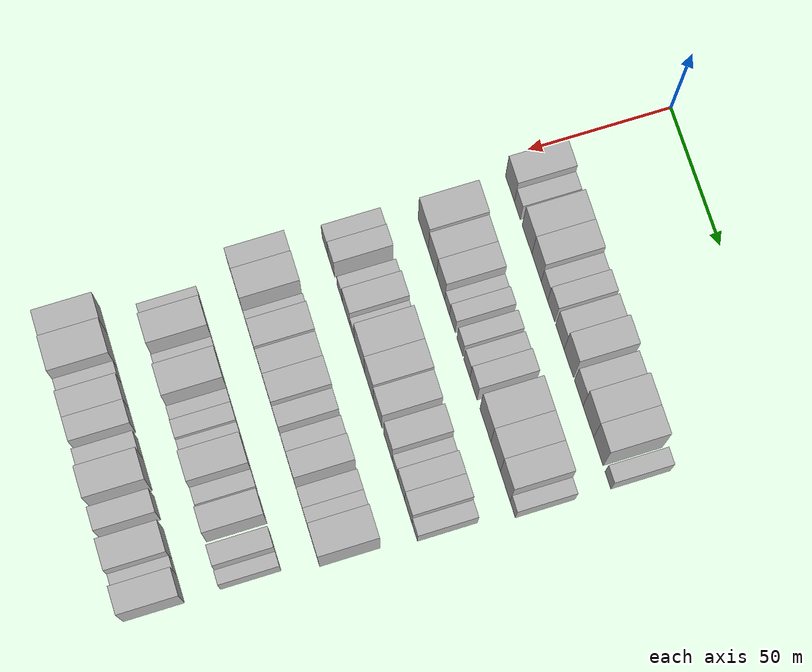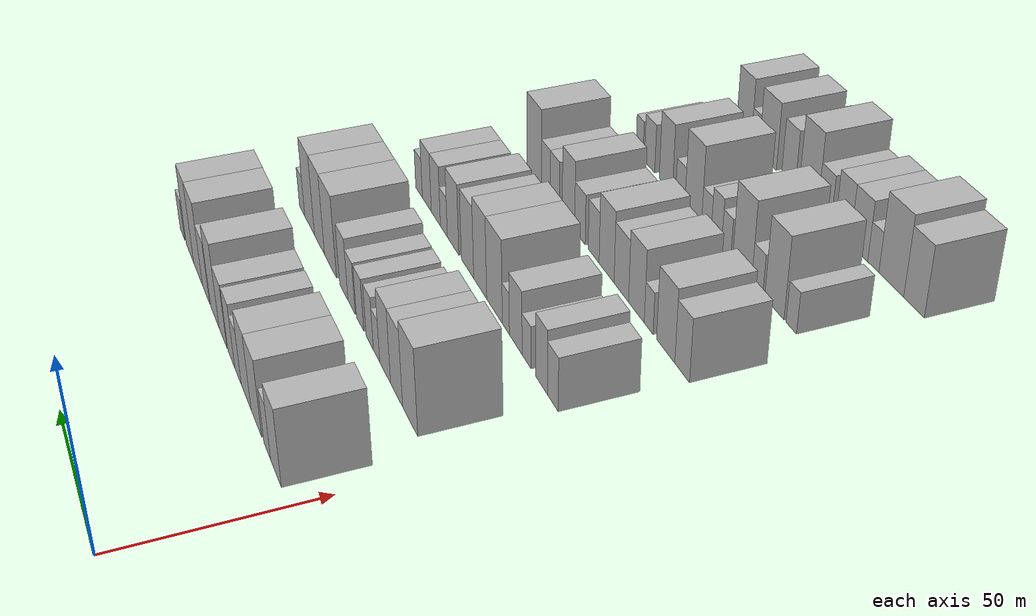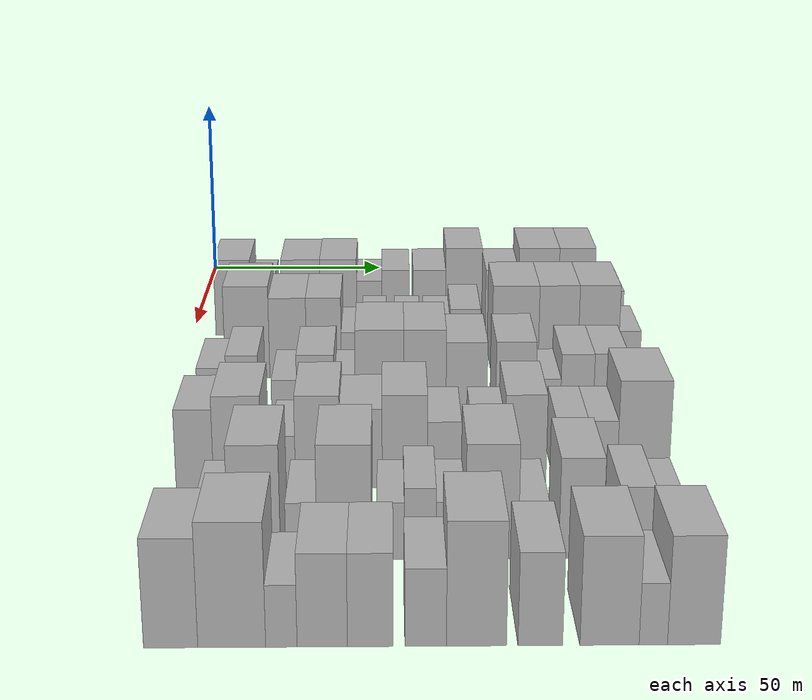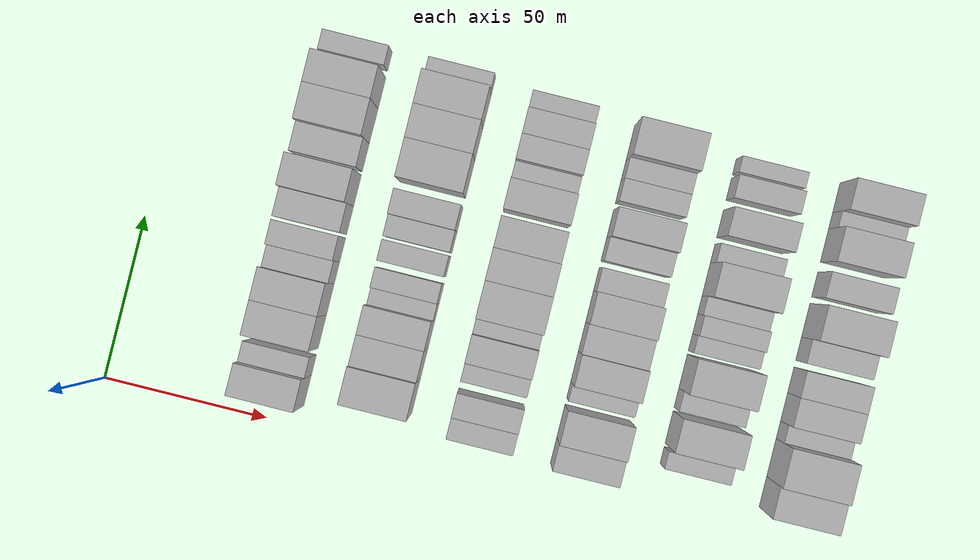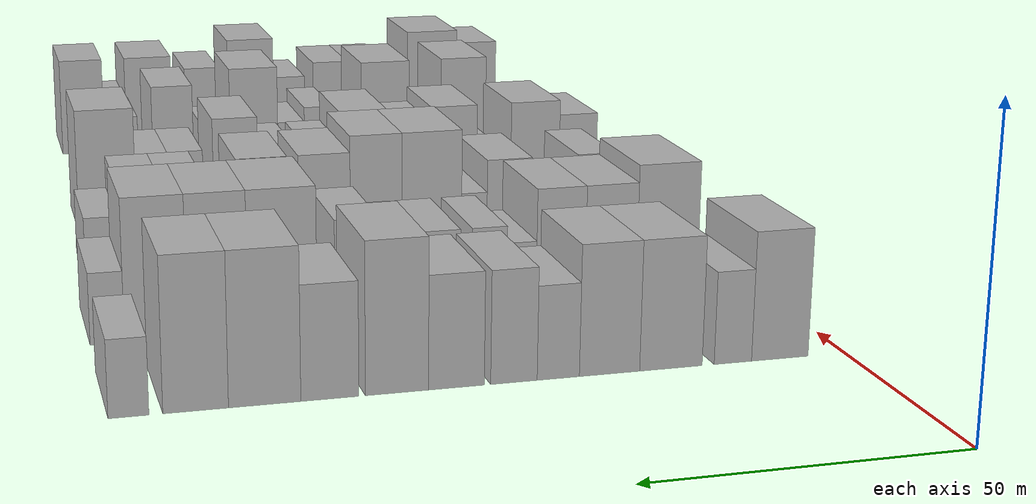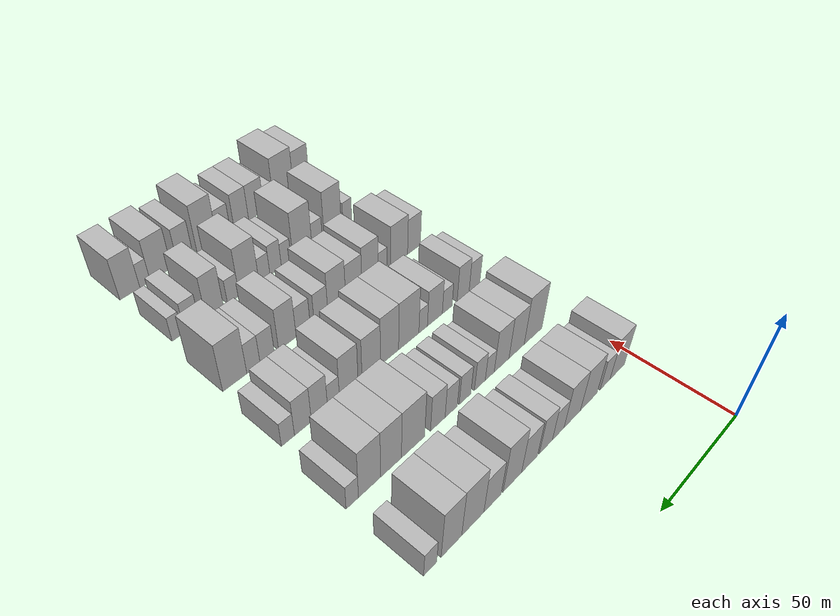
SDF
<sdf version="1.6">
 <world name="default">
  <model name="building_63">
   <static>1</static>
   <pose>50.0000 11.0979 0 0.000000 0.000000 0.000000</pose>
   <link name="link">
    <pose>0 0 10.50 0 0 0</pose>
    <collision name="collision"><geometry><box><size>20.0000 9.5577 21.0000</size></box></geometry></collision>
    <visual name="visual">
     <cast_shadows>0</cast_shadows>
     <geometry><box><size>20.0000 9.5577 21.0000</size></box></geometry>
     <material>
      <script>
       <uri>model://HANNAS_wall/materials/scripts</uri>
       <uri>model://HANNAS_wall/materials/textures</uri>
       <name>vrc/HANNAS_wall</name>
      </script>
     </material>
    </visual>
   </link>
  </model>
  <model name="building_64">
   <static>1</static>
   <pose>50.0000 19.0012 0 0.000000 0.000000 0.000000</pose>
   <link name="link">
    <pose>0 0 7.50 0 0 0</pose>
    <collision name="collision"><geometry><box><size>20.0000 6.2488 15.0000</size></box></geometry></collision>
    <visual name="visual">
     <cast_shadows>0</cast_shadows>
     <geometry><box><size>20.0000 6.2488 15.0000</size></box></geometry>
     <material>
      <script>
       <uri>model://HANNAS_wall/materials/scripts</uri>
       <uri>model://HANNAS_wall/materials/textures</uri>
       <name>vrc/HANNAS_wall</name>
      </script>
     </material>
    </visual>
   </link>
  </model>
  <model name="building_65">
   <static>1</static>
   <pose>50.0000 29.2712 0 0.000000 0.000000 0.000000</pose>
   <link name="link">
    <pose>0 0 10.50 0 0 0</pose>
    <collision name="collision"><geometry><box><size>20.0000 10.2913 21.0000</size></box></geometry></collision>
    <visual name="visual">
     <cast_shadows>0</cast_shadows>
     <geometry><box><size>20.0000 10.2913 21.0000</size></box></geometry>
     <material>
      <script>
       <uri>model://HANNAS_wall/materials/scripts</uri>
       <uri>model://HANNAS_wall/materials/textures</uri>
       <name>vrc/HANNAS_wall</name>
      </script>
     </material>
    </visual>
   </link>
  </model>
  <model name="building_66">
   <static>1</static>
   <pose>50.0000 39.3015 0 0.000000 0.000000 0.000000</pose>
   <link name="link">
    <pose>0 0 10.50 0 0 0</pose>
    <collision name="collision"><geometry><box><size>20.0000 9.7692 21.0000</size></box></geometry></collision>
    <visual name="visual">
     <cast_shadows>0</cast_shadows>
     <geometry><box><size>20.0000 9.7692 21.0000</size></box></geometry>
     <material>
      <script>
       <uri>model://HANNAS_wall/materials/scripts</uri>
       <uri>model://HANNAS_wall/materials/textures</uri>
       <name>vrc/HANNAS_wall</name>
      </script>
     </material>
    </visual>
   </link>
  </model>
  <model name="building_67">
   <static>1</static>
   <pose>50.0000 47.5614 0 0.000000 0.000000 0.000000</pose>
   <link name="link">
    <pose>0 0 7.50 0 0 0</pose>
    <collision name="collision"><geometry><box><size>20.0000 6.7507 15.0000</size></box></geometry></collision>
    <visual name="visual">
     <cast_shadows>0</cast_shadows>
     <geometry><box><size>20.0000 6.7507 15.0000</size></box></geometry>
     <material>
      <script>
       <uri>model://HANNAS_wall/materials/scripts</uri>
       <uri>model://HANNAS_wall/materials/textures</uri>
       <name>vrc/HANNAS_wall</name>
      </script>
     </material>
    </visual>
   </link>
  </model>
  <model name="building_68">
   <static>1</static>
   <pose>50.0000 54.6114 0 0.000000 0.000000 0.000000</pose>
   <link name="link">
    <pose>0 0 9.00 0 0 0</pose>
    <collision name="collision"><geometry><box><size>20.0000 7.3493 18.0000</size></box></geometry></collision>
    <visual name="visual">
     <cast_shadows>0</cast_shadows>
     <geometry><box><size>20.0000 7.3493 18.0000</size></box></geometry>
     <material>
      <script>
       <uri>model://HANNAS_wall/materials/scripts</uri>
       <uri>model://HANNAS_wall/materials/textures</uri>
       <name>vrc/HANNAS_wall</name>
      </script>
     </material>
    </visual>
   </link>
  </model>
  <model name="building_69">
   <static>1</static>
   <pose>50.0000 63.6352 0 0.000000 0.000000 0.000000</pose>
   <link name="link">
    <pose>0 0 9.00 0 0 0</pose>
    <collision name="collision"><geometry><box><size>20.0000 8.6982 18.0000</size></box></geometry></collision>
    <visual name="visual">
     <cast_shadows>0</cast_shadows>
     <geometry><box><size>20.0000 8.6982 18.0000</size></box></geometry>
     <material>
      <script>
       <uri>model://HANNAS_wall/materials/scripts</uri>
       <uri>model://HANNAS_wall/materials/textures</uri>
       <name>vrc/HANNAS_wall</name>
      </script>
     </material>
    </visual>
   </link>
  </model>
  <model name="building_70">
   <static>1</static>
   <pose>50.0000 72.8361 0 0.000000 0.000000 0.000000</pose>
   <link name="link">
    <pose>0 0 12.00 0 0 0</pose>
    <collision name="collision"><geometry><box><size>20.0000 9.7035 24.0000</size></box></geometry></collision>
    <visual name="visual">
     <cast_shadows>0</cast_shadows>
     <geometry><box><size>20.0000 9.7035 24.0000</size></box></geometry>
     <material>
      <script>
       <uri>model://HANNAS_wall/materials/scripts</uri>
       <uri>model://HANNAS_wall/materials/textures</uri>
       <name>vrc/HANNAS_wall</name>
      </script>
     </material>
    </visual>
   </link>
  </model>
  <model name="building_71">
   <static>1</static>
   <pose>50.0000 83.0669 0 0.000000 0.000000 0.000000</pose>
   <link name="link">
    <pose>0 0 9.00 0 0 0</pose>
    <collision name="collision"><geometry><box><size>20.0000 8.7582 18.0000</size></box></geometry></collision>
    <visual name="visual">
     <cast_shadows>0</cast_shadows>
     <geometry><box><size>20.0000 8.7582 18.0000</size></box></geometry>
     <material>
      <script>
       <uri>model://HANNAS_wall/materials/scripts</uri>
       <uri>model://HANNAS_wall/materials/textures</uri>
       <name>vrc/HANNAS_wall</name>
      </script>
     </material>
    </visual>
   </link>
  </model>
  <model name="building_72">
   <static>1</static>
   <pose>50.0000 92.8284 0 0.000000 0.000000 0.000000</pose>
   <link name="link">
    <pose>0 0 12.00 0 0 0</pose>
    <collision name="collision"><geometry><box><size>20.0000 10.7647 24.0000</size></box></geometry></collision>
    <visual name="visual">
     <cast_shadows>0</cast_shadows>
     <geometry><box><size>20.0000 10.7647 24.0000</size></box></geometry>
     <material>
      <script>
       <uri>model://HANNAS_wall/materials/scripts</uri>
       <uri>model://HANNAS_wall/materials/textures</uri>
       <name>vrc/HANNAS_wall</name>
      </script>
     </material>
    </visual>
   </link>
  </model>
  <model name="building_73">
   <static>1</static>
   <pose>50.0000 103.0163 0 0.000000 0.000000 0.000000</pose>
   <link name="link">
    <pose>0 0 12.00 0 0 0</pose>
    <collision name="collision"><geometry><box><size>20.0000 9.6111 24.0000</size></box></geometry></collision>
    <visual name="visual">
     <cast_shadows>0</cast_shadows>
     <geometry><box><size>20.0000 9.6111 24.0000</size></box></geometry>
     <material>
      <script>
       <uri>model://HANNAS_wall/materials/scripts</uri>
       <uri>model://HANNAS_wall/materials/textures</uri>
       <name>vrc/HANNAS_wall</name>
      </script>
     </material>
    </visual>
   </link>
  </model>
  <model name="building_74">
   <static>1</static>
   <pose>50.0000 112.7758 0 0.000000 0.000000 0.000000</pose>
   <link name="link">
    <pose>0 0 6.00 0 0 0</pose>
    <collision name="collision"><geometry><box><size>20.0000 5.9079 12.0000</size></box></geometry></collision>
    <visual name="visual">
     <cast_shadows>0</cast_shadows>
     <geometry><box><size>20.0000 5.9079 12.0000</size></box></geometry>
     <material>
      <script>
       <uri>model://HANNAS_wall/materials/scripts</uri>
       <uri>model://HANNAS_wall/materials/textures</uri>
       <name>vrc/HANNAS_wall</name>
      </script>
     </material>
    </visual>
   </link>
  </model>
  <model name="building_181">
   <static>1</static>
   <pose>82.0000 17.4825 0 0.000000 0.000000 0.000000</pose>
   <link name="link">
    <pose>0 0 12.00 0 0 0</pose>
    <collision name="collision"><geometry><box><size>20.0000 11.0938 24.0000</size></box></geometry></collision>
    <visual name="visual">
     <cast_shadows>0</cast_shadows>
     <geometry><box><size>20.0000 11.0938 24.0000</size></box></geometry>
     <material>
      <script>
       <uri>model://HANNAS_wall/materials/scripts</uri>
       <uri>model://HANNAS_wall/materials/textures</uri>
       <name>vrc/HANNAS_wall</name>
      </script>
     </material>
    </visual>
   </link>
  </model>
  <model name="building_182">
   <static>1</static>
   <pose>82.0000 27.6346 0 0.000000 0.000000 0.000000</pose>
   <link name="link">
    <pose>0 0 10.50 0 0 0</pose>
    <collision name="collision"><geometry><box><size>20.0000 9.2103 21.0000</size></box></geometry></collision>
    <visual name="visual">
     <cast_shadows>0</cast_shadows>
     <geometry><box><size>20.0000 9.2103 21.0000</size></box></geometry>
     <material>
      <script>
       <uri>model://HANNAS_wall/materials/scripts</uri>
       <uri>model://HANNAS_wall/materials/textures</uri>
       <name>vrc/HANNAS_wall</name>
      </script>
     </material>
    </visual>
   </link>
  </model>
  <model name="building_183">
   <static>1</static>
   <pose>82.0000 36.5761 0 0.000000 0.000000 0.000000</pose>
   <link name="link">
    <pose>0 0 10.50 0 0 0</pose>
    <collision name="collision"><geometry><box><size>20.0000 8.6727 21.0000</size></box></geometry></collision>
    <visual name="visual">
     <cast_shadows>0</cast_shadows>
     <geometry><box><size>20.0000 8.6727 21.0000</size></box></geometry>
     <material>
      <script>
       <uri>model://HANNAS_wall/materials/scripts</uri>
       <uri>model://HANNAS_wall/materials/textures</uri>
       <name>vrc/HANNAS_wall</name>
      </script>
     </material>
    </visual>
   </link>
  </model>
  <model name="building_184">
   <static>1</static>
   <pose>82.0000 43.4938 0 0.000000 0.000000 0.000000</pose>
   <link name="link">
    <pose>0 0 6.00 0 0 0</pose>
    <collision name="collision"><geometry><box><size>20.0000 5.1626 12.0000</size></box></geometry></collision>
    <visual name="visual">
     <cast_shadows>0</cast_shadows>
     <geometry><box><size>20.0000 5.1626 12.0000</size></box></geometry>
     <material>
      <script>
       <uri>model://HANNAS_wall/materials/scripts</uri>
       <uri>model://HANNAS_wall/materials/textures</uri>
       <name>vrc/HANNAS_wall</name>
      </script>
     </material>
    </visual>
   </link>
  </model>
  <model name="building_185">
   <static>1</static>
   <pose>82.0000 49.1124 0 0.000000 0.000000 0.000000</pose>
   <link name="link">
    <pose>0 0 7.50 0 0 0</pose>
    <collision name="collision"><geometry><box><size>20.0000 6.0745 15.0000</size></box></geometry></collision>
    <visual name="visual">
     <cast_shadows>0</cast_shadows>
     <geometry><box><size>20.0000 6.0745 15.0000</size></box></geometry>
     <material>
      <script>
       <uri>model://HANNAS_wall/materials/scripts</uri>
       <uri>model://HANNAS_wall/materials/textures</uri>
       <name>vrc/HANNAS_wall</name>
      </script>
     </material>
    </visual>
   </link>
  </model>
  <model name="building_186">
   <static>1</static>
   <pose>82.0000 57.3189 0 0.000000 0.000000 0.000000</pose>
   <link name="link">
    <pose>0 0 7.50 0 0 0</pose>
    <collision name="collision"><geometry><box><size>20.0000 6.3386 15.0000</size></box></geometry></collision>
    <visual name="visual">
     <cast_shadows>0</cast_shadows>
     <geometry><box><size>20.0000 6.3386 15.0000</size></box></geometry>
     <material>
      <script>
       <uri>model://HANNAS_wall/materials/scripts</uri>
       <uri>model://HANNAS_wall/materials/textures</uri>
       <name>vrc/HANNAS_wall</name>
      </script>
     </material>
    </visual>
   </link>
  </model>
  <model name="building_187">
   <static>1</static>
   <pose>82.0000 64.7420 0 0.000000 0.000000 0.000000</pose>
   <link name="link">
    <pose>0 0 7.50 0 0 0</pose>
    <collision name="collision"><geometry><box><size>20.0000 6.5076 15.0000</size></box></geometry></collision>
    <visual name="visual">
     <cast_shadows>0</cast_shadows>
     <geometry><box><size>20.0000 6.5076 15.0000</size></box></geometry>
     <material>
      <script>
       <uri>model://HANNAS_wall/materials/scripts</uri>
       <uri>model://HANNAS_wall/materials/textures</uri>
       <name>vrc/HANNAS_wall</name>
      </script>
     </material>
    </visual>
   </link>
  </model>
  <model name="building_188">
   <static>1</static>
   <pose>82.0000 71.7503 0 0.000000 0.000000 0.000000</pose>
   <link name="link">
    <pose>0 0 9.00 0 0 0</pose>
    <collision name="collision"><geometry><box><size>20.0000 7.5091 18.0000</size></box></geometry></collision>
    <visual name="visual">
     <cast_shadows>0</cast_shadows>
     <geometry><box><size>20.0000 7.5091 18.0000</size></box></geometry>
     <material>
      <script>
       <uri>model://HANNAS_wall/materials/scripts</uri>
       <uri>model://HANNAS_wall/materials/textures</uri>
       <name>vrc/HANNAS_wall</name>
      </script>
     </material>
    </visual>
   </link>
  </model>
  <model name="building_189">
   <static>1</static>
   <pose>82.0000 84.2533 0 0.000000 0.000000 0.000000</pose>
   <link name="link">
    <pose>0 0 12.00 0 0 0</pose>
    <collision name="collision"><geometry><box><size>20.0000 11.4968 24.0000</size></box></geometry></collision>
    <visual name="visual">
     <cast_shadows>0</cast_shadows>
     <geometry><box><size>20.0000 11.4968 24.0000</size></box></geometry>
     <material>
      <script>
       <uri>model://HANNAS_wall/materials/scripts</uri>
       <uri>model://HANNAS_wall/materials/textures</uri>
       <name>vrc/HANNAS_wall</name>
      </script>
     </material>
    </visual>
   </link>
  </model>
  <model name="building_190">
   <static>1</static>
   <pose>82.0000 94.9659 0 0.000000 0.000000 0.000000</pose>
   <link name="link">
    <pose>0 0 12.00 0 0 0</pose>
    <collision name="collision"><geometry><box><size>20.0000 9.9284 24.0000</size></box></geometry></collision>
    <visual name="visual">
     <cast_shadows>0</cast_shadows>
     <geometry><box><size>20.0000 9.9284 24.0000</size></box></geometry>
     <material>
      <script>
       <uri>model://HANNAS_wall/materials/scripts</uri>
       <uri>model://HANNAS_wall/materials/textures</uri>
       <name>vrc/HANNAS_wall</name>
      </script>
     </material>
    </visual>
   </link>
  </model>
  <model name="building_191">
   <static>1</static>
   <pose>82.0000 104.9679 0 0.000000 0.000000 0.000000</pose>
   <link name="link">
    <pose>0 0 12.00 0 0 0</pose>
    <collision name="collision"><geometry><box><size>20.0000 10.0756 24.0000</size></box></geometry></collision>
    <visual name="visual">
     <cast_shadows>0</cast_shadows>
     <geometry><box><size>20.0000 10.0756 24.0000</size></box></geometry>
     <material>
      <script>
       <uri>model://HANNAS_wall/materials/scripts</uri>
       <uri>model://HANNAS_wall/materials/textures</uri>
       <name>vrc/HANNAS_wall</name>
      </script>
     </material>
    </visual>
   </link>
  </model>
  <model name="building_192">
   <static>1</static>
   <pose>82.0000 112.7453 0 0.000000 0.000000 0.000000</pose>
   <link name="link">
    <pose>0 0 6.00 0 0 0</pose>
    <collision name="collision"><geometry><box><size>20.0000 5.4792 12.0000</size></box></geometry></collision>
    <visual name="visual">
     <cast_shadows>0</cast_shadows>
     <geometry><box><size>20.0000 5.4792 12.0000</size></box></geometry>
     <material>
      <script>
       <uri>model://HANNAS_wall/materials/scripts</uri>
       <uri>model://HANNAS_wall/materials/textures</uri>
       <name>vrc/HANNAS_wall</name>
      </script>
     </material>
    </visual>
   </link>
  </model>
  <model name="building_297">
   <static>1</static>
   <pose>114.0000 12.1360 0 0.000000 0.000000 0.000000</pose>
   <link name="link">
    <pose>0 0 7.50 0 0 0</pose>
    <collision name="collision"><geometry><box><size>20.0000 6.7077 15.0000</size></box></geometry></collision>
    <visual name="visual">
     <cast_shadows>0</cast_shadows>
     <geometry><box><size>20.0000 6.7077 15.0000</size></box></geometry>
     <material>
      <script>
       <uri>model://HANNAS_wall/materials/scripts</uri>
       <uri>model://HANNAS_wall/materials/textures</uri>
       <name>vrc/HANNAS_wall</name>
      </script>
     </material>
    </visual>
   </link>
  </model>
  <model name="building_298">
   <static>1</static>
   <pose>114.0000 19.1428 0 0.000000 0.000000 0.000000</pose>
   <link name="link">
    <pose>0 0 9.00 0 0 0</pose>
    <collision name="collision"><geometry><box><size>20.0000 7.3060 18.0000</size></box></geometry></collision>
    <visual name="visual">
     <cast_shadows>0</cast_shadows>
     <geometry><box><size>20.0000 7.3060 18.0000</size></box></geometry>
     <material>
      <script>
       <uri>model://HANNAS_wall/materials/scripts</uri>
       <uri>model://HANNAS_wall/materials/textures</uri>
       <name>vrc/HANNAS_wall</name>
      </script>
     </material>
    </visual>
   </link>
  </model>
  <model name="building_299">
   <static>1</static>
   <pose>114.0000 28.6943 0 0.000000 0.000000 0.000000</pose>
   <link name="link">
    <pose>0 0 6.00 0 0 0</pose>
    <collision name="collision"><geometry><box><size>20.0000 5.7969 12.0000</size></box></geometry></collision>
    <visual name="visual">
     <cast_shadows>0</cast_shadows>
     <geometry><box><size>20.0000 5.7969 12.0000</size></box></geometry>
     <material>
      <script>
       <uri>model://HANNAS_wall/materials/scripts</uri>
       <uri>model://HANNAS_wall/materials/textures</uri>
       <name>vrc/HANNAS_wall</name>
      </script>
     </material>
    </visual>
   </link>
  </model>
  <model name="building_300">
   <static>1</static>
   <pose>114.0000 35.8916 0 0.000000 0.000000 0.000000</pose>
   <link name="link">
    <pose>0 0 9.00 0 0 0</pose>
    <collision name="collision"><geometry><box><size>20.0000 8.5977 18.0000</size></box></geometry></collision>
    <visual name="visual">
     <cast_shadows>0</cast_shadows>
     <geometry><box><size>20.0000 8.5977 18.0000</size></box></geometry>
     <material>
      <script>
       <uri>model://HANNAS_wall/materials/scripts</uri>
       <uri>model://HANNAS_wall/materials/textures</uri>
       <name>vrc/HANNAS_wall</name>
      </script>
     </material>
    </visual>
   </link>
  </model>
  <model name="building_301">
   <static>1</static>
   <pose>114.0000 42.6084 0 0.000000 0.000000 0.000000</pose>
   <link name="link">
    <pose>0 0 6.00 0 0 0</pose>
    <collision name="collision"><geometry><box><size>20.0000 4.8359 12.0000</size></box></geometry></collision>
    <visual name="visual">
     <cast_shadows>0</cast_shadows>
     <geometry><box><size>20.0000 4.8359 12.0000</size></box></geometry>
     <material>
      <script>
       <uri>model://HANNAS_wall/materials/scripts</uri>
       <uri>model://HANNAS_wall/materials/textures</uri>
       <name>vrc/HANNAS_wall</name>
      </script>
     </material>
    </visual>
   </link>
  </model>
  <model name="building_302">
   <static>1</static>
   <pose>114.0000 50.6165 0 0.000000 0.000000 0.000000</pose>
   <link name="link">
    <pose>0 0 12.00 0 0 0</pose>
    <collision name="collision"><geometry><box><size>20.0000 11.1803 24.0000</size></box></geometry></collision>
    <visual name="visual">
     <cast_shadows>0</cast_shadows>
     <geometry><box><size>20.0000 11.1803 24.0000</size></box></geometry>
     <material>
      <script>
       <uri>model://HANNAS_wall/materials/scripts</uri>
       <uri>model://HANNAS_wall/materials/textures</uri>
       <name>vrc/HANNAS_wall</name>
      </script>
     </material>
    </visual>
   </link>
  </model>
  <model name="building_303">
   <static>1</static>
   <pose>114.0000 61.0304 0 0.000000 0.000000 0.000000</pose>
   <link name="link">
    <pose>0 0 12.00 0 0 0</pose>
    <collision name="collision"><geometry><box><size>20.0000 9.6474 24.0000</size></box></geometry></collision>
    <visual name="visual">
     <cast_shadows>0</cast_shadows>
     <geometry><box><size>20.0000 9.6474 24.0000</size></box></geometry>
     <material>
      <script>
       <uri>model://HANNAS_wall/materials/scripts</uri>
       <uri>model://HANNAS_wall/materials/textures</uri>
       <name>vrc/HANNAS_wall</name>
      </script>
     </material>
    </visual>
   </link>
  </model>
  <model name="building_304">
   <static>1</static>
   <pose>114.0000 70.5781 0 0.000000 0.000000 0.000000</pose>
   <link name="link">
    <pose>0 0 10.50 0 0 0</pose>
    <collision name="collision"><geometry><box><size>20.0000 9.4480 21.0000</size></box></geometry></collision>
    <visual name="visual">
     <cast_shadows>0</cast_shadows>
     <geometry><box><size>20.0000 9.4480 21.0000</size></box></geometry>
     <material>
      <script>
       <uri>model://HANNAS_wall/materials/scripts</uri>
       <uri>model://HANNAS_wall/materials/textures</uri>
       <name>vrc/HANNAS_wall</name>
      </script>
     </material>
    </visual>
   </link>
  </model>
  <model name="building_305">
   <static>1</static>
   <pose>114.0000 81.9003 0 0.000000 0.000000 0.000000</pose>
   <link name="link">
    <pose>0 0 10.50 0 0 0</pose>
    <collision name="collision"><geometry><box><size>20.0000 9.1964 21.0000</size></box></geometry></collision>
    <visual name="visual">
     <cast_shadows>0</cast_shadows>
     <geometry><box><size>20.0000 9.1964 21.0000</size></box></geometry>
     <material>
      <script>
       <uri>model://HANNAS_wall/materials/scripts</uri>
       <uri>model://HANNAS_wall/materials/textures</uri>
       <name>vrc/HANNAS_wall</name>
      </script>
     </material>
    </visual>
   </link>
  </model>
  <model name="building_306">
   <static>1</static>
   <pose>114.0000 89.3659 0 0.000000 0.000000 0.000000</pose>
   <link name="link">
    <pose>0 0 6.00 0 0 0</pose>
    <collision name="collision"><geometry><box><size>20.0000 5.7349 12.0000</size></box></geometry></collision>
    <visual name="visual">
     <cast_shadows>0</cast_shadows>
     <geometry><box><size>20.0000 5.7349 12.0000</size></box></geometry>
     <material>
      <script>
       <uri>model://HANNAS_wall/materials/scripts</uri>
       <uri>model://HANNAS_wall/materials/textures</uri>
       <name>vrc/HANNAS_wall</name>
      </script>
     </material>
    </visual>
   </link>
  </model>
  <model name="building_307">
   <static>1</static>
   <pose>114.0000 96.0363 0 0.000000 0.000000 0.000000</pose>
   <link name="link">
    <pose>0 0 9.00 0 0 0</pose>
    <collision name="collision"><geometry><box><size>20.0000 7.6059 18.0000</size></box></geometry></collision>
    <visual name="visual">
     <cast_shadows>0</cast_shadows>
     <geometry><box><size>20.0000 7.6059 18.0000</size></box></geometry>
     <material>
      <script>
       <uri>model://HANNAS_wall/materials/scripts</uri>
       <uri>model://HANNAS_wall/materials/textures</uri>
       <name>vrc/HANNAS_wall</name>
      </script>
     </material>
    </visual>
   </link>
  </model>
  <model name="building_308">
   <static>1</static>
   <pose>114.0000 103.7225 0 0.000000 0.000000 0.000000</pose>
   <link name="link">
    <pose>0 0 9.00 0 0 0</pose>
    <collision name="collision"><geometry><box><size>20.0000 7.7665 18.0000</size></box></geometry></collision>
    <visual name="visual">
     <cast_shadows>0</cast_shadows>
     <geometry><box><size>20.0000 7.7665 18.0000</size></box></geometry>
     <material>
      <script>
       <uri>model://HANNAS_wall/materials/scripts</uri>
       <uri>model://HANNAS_wall/materials/textures</uri>
       <name>vrc/HANNAS_wall</name>
      </script>
     </material>
    </visual>
   </link>
  </model>
  <model name="building_309">
   <static>1</static>
   <pose>114.0000 110.5209 0 0.000000 0.000000 0.000000</pose>
   <link name="link">
    <pose>0 0 6.00 0 0 0</pose>
    <collision name="collision"><geometry><box><size>20.0000 5.8302 12.0000</size></box></geometry></collision>
    <visual name="visual">
     <cast_shadows>0</cast_shadows>
     <geometry><box><size>20.0000 5.8302 12.0000</size></box></geometry>
     <material>
      <script>
       <uri>model://HANNAS_wall/materials/scripts</uri>
       <uri>model://HANNAS_wall/materials/textures</uri>
       <name>vrc/HANNAS_wall</name>
      </script>
     </material>
    </visual>
   </link>
  </model>
  <model name="building_421">
   <static>1</static>
   <pose>146.0000 11.6669 0 0.000000 0.000000 0.000000</pose>
   <link name="link">
    <pose>0 0 9.00 0 0 0</pose>
    <collision name="collision"><geometry><box><size>20.0000 7.9338 18.0000</size></box></geometry></collision>
    <visual name="visual">
     <cast_shadows>0</cast_shadows>
     <geometry><box><size>20.0000 7.9338 18.0000</size></box></geometry>
     <material>
      <script>
       <uri>model://HANNAS_wall/materials/scripts</uri>
       <uri>model://HANNAS_wall/materials/textures</uri>
       <name>vrc/HANNAS_wall</name>
      </script>
     </material>
    </visual>
   </link>
  </model>
  <model name="building_422">
   <static>1</static>
   <pose>146.0000 20.7343 0 0.000000 0.000000 0.000000</pose>
   <link name="link">
    <pose>0 0 10.50 0 0 0</pose>
    <collision name="collision"><geometry><box><size>20.0000 10.2010 21.0000</size></box></geometry></collision>
    <visual name="visual">
     <cast_shadows>0</cast_shadows>
     <geometry><box><size>20.0000 10.2010 21.0000</size></box></geometry>
     <material>
      <script>
       <uri>model://HANNAS_wall/materials/scripts</uri>
       <uri>model://HANNAS_wall/materials/textures</uri>
       <name>vrc/HANNAS_wall</name>
      </script>
     </material>
    </visual>
   </link>
  </model>
  <model name="building_423">
   <static>1</static>
   <pose>146.0000 30.3844 0 0.000000 0.000000 0.000000</pose>
   <link name="link">
    <pose>0 0 6.00 0 0 0</pose>
    <collision name="collision"><geometry><box><size>20.0000 5.0994 12.0000</size></box></geometry></collision>
    <visual name="visual">
     <cast_shadows>0</cast_shadows>
     <geometry><box><size>20.0000 5.0994 12.0000</size></box></geometry>
     <material>
      <script>
       <uri>model://HANNAS_wall/materials/scripts</uri>
       <uri>model://HANNAS_wall/materials/textures</uri>
       <name>vrc/HANNAS_wall</name>
      </script>
     </material>
    </visual>
   </link>
  </model>
  <model name="building_424">
   <static>1</static>
   <pose>146.0000 37.6244 0 0.000000 0.000000 0.000000</pose>
   <link name="link">
    <pose>0 0 10.50 0 0 0</pose>
    <collision name="collision"><geometry><box><size>20.0000 9.3805 21.0000</size></box></geometry></collision>
    <visual name="visual">
     <cast_shadows>0</cast_shadows>
     <geometry><box><size>20.0000 9.3805 21.0000</size></box></geometry>
     <material>
      <script>
       <uri>model://HANNAS_wall/materials/scripts</uri>
       <uri>model://HANNAS_wall/materials/textures</uri>
       <name>vrc/HANNAS_wall</name>
      </script>
     </material>
    </visual>
   </link>
  </model>
  <model name="building_425">
   <static>1</static>
   <pose>146.0000 46.7964 0 0.000000 0.000000 0.000000</pose>
   <link name="link">
    <pose>0 0 9.00 0 0 0</pose>
    <collision name="collision"><geometry><box><size>20.0000 8.9636 18.0000</size></box></geometry></collision>
    <visual name="visual">
     <cast_shadows>0</cast_shadows>
     <geometry><box><size>20.0000 8.9636 18.0000</size></box></geometry>
     <material>
      <script>
       <uri>model://HANNAS_wall/materials/scripts</uri>
       <uri>model://HANNAS_wall/materials/textures</uri>
       <name>vrc/HANNAS_wall</name>
      </script>
     </material>
    </visual>
   </link>
  </model>
  <model name="building_426">
   <static>1</static>
   <pose>146.0000 56.0695 0 0.000000 0.000000 0.000000</pose>
   <link name="link">
    <pose>0 0 10.50 0 0 0</pose>
    <collision name="collision"><geometry><box><size>20.0000 9.5826 21.0000</size></box></geometry></collision>
    <visual name="visual">
     <cast_shadows>0</cast_shadows>
     <geometry><box><size>20.0000 9.5826 21.0000</size></box></geometry>
     <material>
      <script>
       <uri>model://HANNAS_wall/materials/scripts</uri>
       <uri>model://HANNAS_wall/materials/textures</uri>
       <name>vrc/HANNAS_wall</name>
      </script>
     </material>
    </visual>
   </link>
  </model>
  <model name="building_427">
   <static>1</static>
   <pose>146.0000 64.4467 0 0.000000 0.000000 0.000000</pose>
   <link name="link">
    <pose>0 0 7.50 0 0 0</pose>
    <collision name="collision"><geometry><box><size>20.0000 7.1718 15.0000</size></box></geometry></collision>
    <visual name="visual">
     <cast_shadows>0</cast_shadows>
     <geometry><box><size>20.0000 7.1718 15.0000</size></box></geometry>
     <material>
      <script>
       <uri>model://HANNAS_wall/materials/scripts</uri>
       <uri>model://HANNAS_wall/materials/textures</uri>
       <name>vrc/HANNAS_wall</name>
      </script>
     </material>
    </visual>
   </link>
  </model>
  <model name="building_428">
   <static>1</static>
   <pose>146.0000 73.6234 0 0.000000 0.000000 0.000000</pose>
   <link name="link">
    <pose>0 0 7.50 0 0 0</pose>
    <collision name="collision"><geometry><box><size>20.0000 7.1814 15.0000</size></box></geometry></collision>
    <visual name="visual">
     <cast_shadows>0</cast_shadows>
     <geometry><box><size>20.0000 7.1814 15.0000</size></box></geometry>
     <material>
      <script>
       <uri>model://HANNAS_wall/materials/scripts</uri>
       <uri>model://HANNAS_wall/materials/textures</uri>
       <name>vrc/HANNAS_wall</name>
      </script>
     </material>
    </visual>
   </link>
  </model>
  <model name="building_429">
   <static>1</static>
   <pose>146.0000 81.5656 0 0.000000 0.000000 0.000000</pose>
   <link name="link">
    <pose>0 0 10.50 0 0 0</pose>
    <collision name="collision"><geometry><box><size>20.0000 8.7031 21.0000</size></box></geometry></collision>
    <visual name="visual">
     <cast_shadows>0</cast_shadows>
     <geometry><box><size>20.0000 8.7031 21.0000</size></box></geometry>
     <material>
      <script>
       <uri>model://HANNAS_wall/materials/scripts</uri>
       <uri>model://HANNAS_wall/materials/textures</uri>
       <name>vrc/HANNAS_wall</name>
      </script>
     </material>
    </visual>
   </link>
  </model>
  <model name="building_430">
   <static>1</static>
   <pose>146.0000 91.3275 0 0.000000 0.000000 0.000000</pose>
   <link name="link">
    <pose>0 0 7.50 0 0 0</pose>
    <collision name="collision"><geometry><box><size>20.0000 6.8208 15.0000</size></box></geometry></collision>
    <visual name="visual">
     <cast_shadows>0</cast_shadows>
     <geometry><box><size>20.0000 6.8208 15.0000</size></box></geometry>
     <material>
      <script>
       <uri>model://HANNAS_wall/materials/scripts</uri>
       <uri>model://HANNAS_wall/materials/textures</uri>
       <name>vrc/HANNAS_wall</name>
      </script>
     </material>
    </visual>
   </link>
  </model>
  <model name="building_431">
   <static>1</static>
   <pose>146.0000 97.8572 0 0.000000 0.000000 0.000000</pose>
   <link name="link">
    <pose>0 0 7.50 0 0 0</pose>
    <collision name="collision"><geometry><box><size>20.0000 6.2384 15.0000</size></box></geometry></collision>
    <visual name="visual">
     <cast_shadows>0</cast_shadows>
     <geometry><box><size>20.0000 6.2384 15.0000</size></box></geometry>
     <material>
      <script>
       <uri>model://HANNAS_wall/materials/scripts</uri>
       <uri>model://HANNAS_wall/materials/textures</uri>
       <name>vrc/HANNAS_wall</name>
      </script>
     </material>
    </visual>
   </link>
  </model>
  <model name="building_432">
   <static>1</static>
   <pose>146.0000 106.4792 0 0.000000 0.000000 0.000000</pose>
   <link name="link">
    <pose>0 0 12.00 0 0 0</pose>
    <collision name="collision"><geometry><box><size>20.0000 11.0057 24.0000</size></box></geometry></collision>
    <visual name="visual">
     <cast_shadows>0</cast_shadows>
     <geometry><box><size>20.0000 11.0057 24.0000</size></box></geometry>
     <material>
      <script>
       <uri>model://HANNAS_wall/materials/scripts</uri>
       <uri>model://HANNAS_wall/materials/textures</uri>
       <name>vrc/HANNAS_wall</name>
      </script>
     </material>
    </visual>
   </link>
  </model>
  <model name="building_530">
   <static>1</static>
   <pose>178.0000 18.1443 0 0.000000 0.000000 0.000000</pose>
   <link name="link">
    <pose>0 0 6.00 0 0 0</pose>
    <collision name="collision"><geometry><box><size>20.0000 5.2699 12.0000</size></box></geometry></collision>
    <visual name="visual">
     <cast_shadows>0</cast_shadows>
     <geometry><box><size>20.0000 5.2699 12.0000</size></box></geometry>
     <material>
      <script>
       <uri>model://HANNAS_wall/materials/scripts</uri>
       <uri>model://HANNAS_wall/materials/textures</uri>
       <name>vrc/HANNAS_wall</name>
      </script>
     </material>
    </visual>
   </link>
  </model>
  <model name="building_531">
   <static>1</static>
   <pose>178.0000 26.7977 0 0.000000 0.000000 0.000000</pose>
   <link name="link">
    <pose>0 0 12.00 0 0 0</pose>
    <collision name="collision"><geometry><box><size>20.0000 10.0369 24.0000</size></box></geometry></collision>
    <visual name="visual">
     <cast_shadows>0</cast_shadows>
     <geometry><box><size>20.0000 10.0369 24.0000</size></box></geometry>
     <material>
      <script>
       <uri>model://HANNAS_wall/materials/scripts</uri>
       <uri>model://HANNAS_wall/materials/textures</uri>
       <name>vrc/HANNAS_wall</name>
      </script>
     </material>
    </visual>
   </link>
  </model>
  <model name="building_532">
   <static>1</static>
   <pose>178.0000 35.8053 0 0.000000 0.000000 0.000000</pose>
   <link name="link">
    <pose>0 0 6.00 0 0 0</pose>
    <collision name="collision"><geometry><box><size>20.0000 5.9781 12.0000</size></box></geometry></collision>
    <visual name="visual">
     <cast_shadows>0</cast_shadows>
     <geometry><box><size>20.0000 5.9781 12.0000</size></box></geometry>
     <material>
      <script>
       <uri>model://HANNAS_wall/materials/scripts</uri>
       <uri>model://HANNAS_wall/materials/textures</uri>
       <name>vrc/HANNAS_wall</name>
      </script>
     </material>
    </visual>
   </link>
  </model>
  <model name="building_533">
   <static>1</static>
   <pose>178.0000 44.0714 0 0.000000 0.000000 0.000000</pose>
   <link name="link">
    <pose>0 0 12.00 0 0 0</pose>
    <collision name="collision"><geometry><box><size>20.0000 10.5541 24.0000</size></box></geometry></collision>
    <visual name="visual">
     <cast_shadows>0</cast_shadows>
     <geometry><box><size>20.0000 10.5541 24.0000</size></box></geometry>
     <material>
      <script>
       <uri>model://HANNAS_wall/materials/scripts</uri>
       <uri>model://HANNAS_wall/materials/textures</uri>
       <name>vrc/HANNAS_wall</name>
      </script>
     </material>
    </visual>
   </link>
  </model>
  <model name="building_534">
   <static>1</static>
   <pose>178.0000 52.9768 0 0.000000 0.000000 0.000000</pose>
   <link name="link">
    <pose>0 0 6.00 0 0 0</pose>
    <collision name="collision"><geometry><box><size>20.0000 5.2567 12.0000</size></box></geometry></collision>
    <visual name="visual">
     <cast_shadows>0</cast_shadows>
     <geometry><box><size>20.0000 5.2567 12.0000</size></box></geometry>
     <material>
      <script>
       <uri>model://HANNAS_wall/materials/scripts</uri>
       <uri>model://HANNAS_wall/materials/textures</uri>
       <name>vrc/HANNAS_wall</name>
      </script>
     </material>
    </visual>
   </link>
  </model>
  <model name="building_535">
   <static>1</static>
   <pose>178.0000 58.6636 0 0.000000 0.000000 0.000000</pose>
   <link name="link">
    <pose>0 0 7.50 0 0 0</pose>
    <collision name="collision"><geometry><box><size>20.0000 6.1168 15.0000</size></box></geometry></collision>
    <visual name="visual">
     <cast_shadows>0</cast_shadows>
     <geometry><box><size>20.0000 6.1168 15.0000</size></box></geometry>
     <material>
      <script>
       <uri>model://HANNAS_wall/materials/scripts</uri>
       <uri>model://HANNAS_wall/materials/textures</uri>
       <name>vrc/HANNAS_wall</name>
      </script>
     </material>
    </visual>
   </link>
  </model>
  <model name="building_536">
   <static>1</static>
   <pose>178.0000 64.5766 0 0.000000 0.000000 0.000000</pose>
   <link name="link">
    <pose>0 0 6.00 0 0 0</pose>
    <collision name="collision"><geometry><box><size>20.0000 5.7091 12.0000</size></box></geometry></collision>
    <visual name="visual">
     <cast_shadows>0</cast_shadows>
     <geometry><box><size>20.0000 5.7091 12.0000</size></box></geometry>
     <material>
      <script>
       <uri>model://HANNAS_wall/materials/scripts</uri>
       <uri>model://HANNAS_wall/materials/textures</uri>
       <name>vrc/HANNAS_wall</name>
      </script>
     </material>
    </visual>
   </link>
  </model>
  <model name="building_537">
   <static>1</static>
   <pose>178.0000 72.5091 0 0.000000 0.000000 0.000000</pose>
   <link name="link">
    <pose>0 0 12.00 0 0 0</pose>
    <collision name="collision"><geometry><box><size>20.0000 10.1560 24.0000</size></box></geometry></collision>
    <visual name="visual">
     <cast_shadows>0</cast_shadows>
     <geometry><box><size>20.0000 10.1560 24.0000</size></box></geometry>
     <material>
      <script>
       <uri>model://HANNAS_wall/materials/scripts</uri>
       <uri>model://HANNAS_wall/materials/textures</uri>
       <name>vrc/HANNAS_wall</name>
      </script>
     </material>
    </visual>
   </link>
  </model>
  <model name="building_538">
   <static>1</static>
   <pose>178.0000 80.4806 0 0.000000 0.000000 0.000000</pose>
   <link name="link">
    <pose>0 0 6.00 0 0 0</pose>
    <collision name="collision"><geometry><box><size>20.0000 5.7869 12.0000</size></box></geometry></collision>
    <visual name="visual">
     <cast_shadows>0</cast_shadows>
     <geometry><box><size>20.0000 5.7869 12.0000</size></box></geometry>
     <material>
      <script>
       <uri>model://HANNAS_wall/materials/scripts</uri>
       <uri>model://HANNAS_wall/materials/textures</uri>
       <name>vrc/HANNAS_wall</name>
      </script>
     </material>
    </visual>
   </link>
  </model>
  <model name="building_539">
   <static>1</static>
   <pose>178.0000 89.6316 0 0.000000 0.000000 0.000000</pose>
   <link name="link">
    <pose>0 0 10.50 0 0 0</pose>
    <collision name="collision"><geometry><box><size>20.0000 8.5152 21.0000</size></box></geometry></collision>
    <visual name="visual">
     <cast_shadows>0</cast_shadows>
     <geometry><box><size>20.0000 8.5152 21.0000</size></box></geometry>
     <material>
      <script>
       <uri>model://HANNAS_wall/materials/scripts</uri>
       <uri>model://HANNAS_wall/materials/textures</uri>
       <name>vrc/HANNAS_wall</name>
      </script>
     </material>
    </visual>
   </link>
  </model>
  <model name="building_540">
   <static>1</static>
   <pose>178.0000 100.3358 0 0.000000 0.000000 0.000000</pose>
   <link name="link">
    <pose>0 0 7.50 0 0 0</pose>
    <collision name="collision"><geometry><box><size>20.0000 6.8931 15.0000</size></box></geometry></collision>
    <visual name="visual">
     <cast_shadows>0</cast_shadows>
     <geometry><box><size>20.0000 6.8931 15.0000</size></box></geometry>
     <material>
      <script>
       <uri>model://HANNAS_wall/materials/scripts</uri>
       <uri>model://HANNAS_wall/materials/textures</uri>
       <name>vrc/HANNAS_wall</name>
      </script>
     </material>
    </visual>
   </link>
  </model>
  <model name="building_541">
   <static>1</static>
   <pose>178.0000 107.1999 0 0.000000 0.000000 0.000000</pose>
   <link name="link">
    <pose>0 0 6.00 0 0 0</pose>
    <collision name="collision"><geometry><box><size>20.0000 4.8352 12.0000</size></box></geometry></collision>
    <visual name="visual">
     <cast_shadows>0</cast_shadows>
     <geometry><box><size>20.0000 4.8352 12.0000</size></box></geometry>
     <material>
      <script>
       <uri>model://HANNAS_wall/materials/scripts</uri>
       <uri>model://HANNAS_wall/materials/textures</uri>
       <name>vrc/HANNAS_wall</name>
      </script>
     </material>
    </visual>
   </link>
  </model>
  <model name="building_654">
   <static>1</static>
   <pose>210.0000 14.7718 0 0.000000 0.000000 0.000000</pose>
   <link name="link">
    <pose>0 0 10.50 0 0 0</pose>
    <collision name="collision"><geometry><box><size>20.0000 9.4059 21.0000</size></box></geometry></collision>
    <visual name="visual">
     <cast_shadows>0</cast_shadows>
     <geometry><box><size>20.0000 9.4059 21.0000</size></box></geometry>
     <material>
      <script>
       <uri>model://HANNAS_wall/materials/scripts</uri>
       <uri>model://HANNAS_wall/materials/textures</uri>
       <name>vrc/HANNAS_wall</name>
      </script>
     </material>
    </visual>
   </link>
  </model>
  <model name="building_655">
   <static>1</static>
   <pose>210.0000 25.3543 0 0.000000 0.000000 0.000000</pose>
   <link name="link">
    <pose>0 0 12.00 0 0 0</pose>
    <collision name="collision"><geometry><box><size>20.0000 11.7593 24.0000</size></box></geometry></collision>
    <visual name="visual">
     <cast_shadows>0</cast_shadows>
     <geometry><box><size>20.0000 11.7593 24.0000</size></box></geometry>
     <material>
      <script>
       <uri>model://HANNAS_wall/materials/scripts</uri>
       <uri>model://HANNAS_wall/materials/textures</uri>
       <name>vrc/HANNAS_wall</name>
      </script>
     </material>
    </visual>
   </link>
  </model>
  <model name="building_656">
   <static>1</static>
   <pose>210.0000 33.9556 0 0.000000 0.000000 0.000000</pose>
   <link name="link">
    <pose>0 0 6.00 0 0 0</pose>
    <collision name="collision"><geometry><box><size>20.0000 5.4433 12.0000</size></box></geometry></collision>
    <visual name="visual">
     <cast_shadows>0</cast_shadows>
     <geometry><box><size>20.0000 5.4433 12.0000</size></box></geometry>
     <material>
      <script>
       <uri>model://HANNAS_wall/materials/scripts</uri>
       <uri>model://HANNAS_wall/materials/textures</uri>
       <name>vrc/HANNAS_wall</name>
      </script>
     </material>
    </visual>
   </link>
  </model>
  <model name="building_657">
   <static>1</static>
   <pose>210.0000 41.0470 0 0.000000 0.000000 0.000000</pose>
   <link name="link">
    <pose>0 0 9.00 0 0 0</pose>
    <collision name="collision"><geometry><box><size>20.0000 8.7395 18.0000</size></box></geometry></collision>
    <visual name="visual">
     <cast_shadows>0</cast_shadows>
     <geometry><box><size>20.0000 8.7395 18.0000</size></box></geometry>
     <material>
      <script>
       <uri>model://HANNAS_wall/materials/scripts</uri>
       <uri>model://HANNAS_wall/materials/textures</uri>
       <name>vrc/HANNAS_wall</name>
      </script>
     </material>
    </visual>
   </link>
  </model>
  <model name="building_658">
   <static>1</static>
   <pose>210.0000 49.4023 0 0.000000 0.000000 0.000000</pose>
   <link name="link">
    <pose>0 0 9.00 0 0 0</pose>
    <collision name="collision"><geometry><box><size>20.0000 7.9711 18.0000</size></box></geometry></collision>
    <visual name="visual">
     <cast_shadows>0</cast_shadows>
     <geometry><box><size>20.0000 7.9711 18.0000</size></box></geometry>
     <material>
      <script>
       <uri>model://HANNAS_wall/materials/scripts</uri>
       <uri>model://HANNAS_wall/materials/textures</uri>
       <name>vrc/HANNAS_wall</name>
      </script>
     </material>
    </visual>
   </link>
  </model>
  <model name="building_659">
   <static>1</static>
   <pose>210.0000 58.9904 0 0.000000 0.000000 0.000000</pose>
   <link name="link">
    <pose>0 0 7.50 0 0 0</pose>
    <collision name="collision"><geometry><box><size>20.0000 7.2051 15.0000</size></box></geometry></collision>
    <visual name="visual">
     <cast_shadows>0</cast_shadows>
     <geometry><box><size>20.0000 7.2051 15.0000</size></box></geometry>
     <material>
      <script>
       <uri>model://HANNAS_wall/materials/scripts</uri>
       <uri>model://HANNAS_wall/materials/textures</uri>
       <name>vrc/HANNAS_wall</name>
      </script>
     </material>
    </visual>
   </link>
  </model>
  <model name="building_660">
   <static>1</static>
   <pose>210.0000 67.8210 0 0.000000 0.000000 0.000000</pose>
   <link name="link">
    <pose>0 0 12.00 0 0 0</pose>
    <collision name="collision"><geometry><box><size>20.0000 10.4560 24.0000</size></box></geometry></collision>
    <visual name="visual">
     <cast_shadows>0</cast_shadows>
     <geometry><box><size>20.0000 10.4560 24.0000</size></box></geometry>
     <material>
      <script>
       <uri>model://HANNAS_wall/materials/scripts</uri>
       <uri>model://HANNAS_wall/materials/textures</uri>
       <name>vrc/HANNAS_wall</name>
      </script>
     </material>
    </visual>
   </link>
  </model>
  <model name="building_661">
   <static>1</static>
   <pose>210.0000 78.9327 0 0.000000 0.000000 0.000000</pose>
   <link name="link">
    <pose>0 0 9.00 0 0 0</pose>
    <collision name="collision"><geometry><box><size>20.0000 7.7674 18.0000</size></box></geometry></collision>
    <visual name="visual">
     <cast_shadows>0</cast_shadows>
     <geometry><box><size>20.0000 7.7674 18.0000</size></box></geometry>
     <material>
      <script>
       <uri>model://HANNAS_wall/materials/scripts</uri>
       <uri>model://HANNAS_wall/materials/textures</uri>
       <name>vrc/HANNAS_wall</name>
      </script>
     </material>
    </visual>
   </link>
  </model>
  <model name="building_662">
   <static>1</static>
   <pose>210.0000 90.9692 0 0.000000 0.000000 0.000000</pose>
   <link name="link">
    <pose>0 0 10.50 0 0 0</pose>
    <collision name="collision"><geometry><box><size>20.0000 10.3056 21.0000</size></box></geometry></collision>
    <visual name="visual">
     <cast_shadows>0</cast_shadows>
     <geometry><box><size>20.0000 10.3056 21.0000</size></box></geometry>
     <material>
      <script>
       <uri>model://HANNAS_wall/materials/scripts</uri>
       <uri>model://HANNAS_wall/materials/textures</uri>
       <name>vrc/HANNAS_wall</name>
      </script>
     </material>
    </visual>
   </link>
  </model>
  <model name="building_663">
   <static>1</static>
   <pose>210.0000 98.5952 0 0.000000 0.000000 0.000000</pose>
   <link name="link">
    <pose>0 0 6.00 0 0 0</pose>
    <collision name="collision"><geometry><box><size>20.0000 4.9462 12.0000</size></box></geometry></collision>
    <visual name="visual">
     <cast_shadows>0</cast_shadows>
     <geometry><box><size>20.0000 4.9462 12.0000</size></box></geometry>
     <material>
      <script>
       <uri>model://HANNAS_wall/materials/scripts</uri>
       <uri>model://HANNAS_wall/materials/textures</uri>
       <name>vrc/HANNAS_wall</name>
      </script>
     </material>
    </visual>
   </link>
  </model>
  <model name="building_664">
   <static>1</static>
   <pose>210.0000 105.6960 0 0.000000 0.000000 0.000000</pose>
   <link name="link">
    <pose>0 0 10.50 0 0 0</pose>
    <collision name="collision"><geometry><box><size>20.0000 9.2554 21.0000</size></box></geometry></collision>
    <visual name="visual">
     <cast_shadows>0</cast_shadows>
     <geometry><box><size>20.0000 9.2554 21.0000</size></box></geometry>
     <material>
      <script>
       <uri>model://HANNAS_wall/materials/scripts</uri>
       <uri>model://HANNAS_wall/materials/textures</uri>
       <name>vrc/HANNAS_wall</name>
      </script>
     </material>
    </visual>
   </link>
  </model>
 </world>
</sdf>
